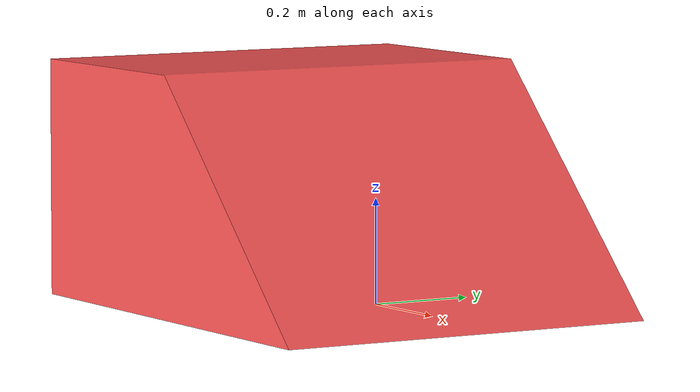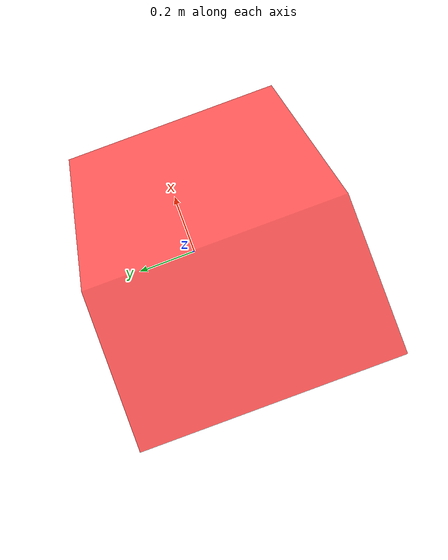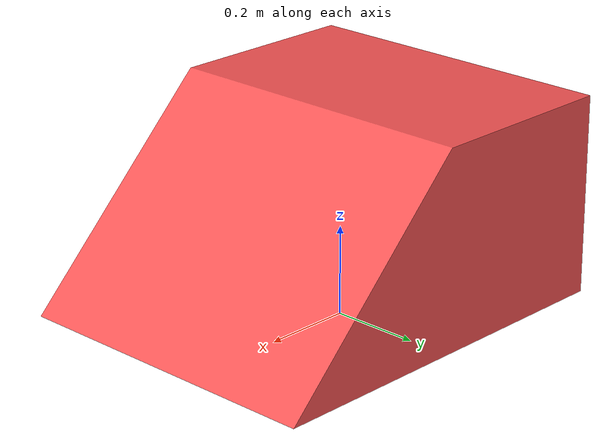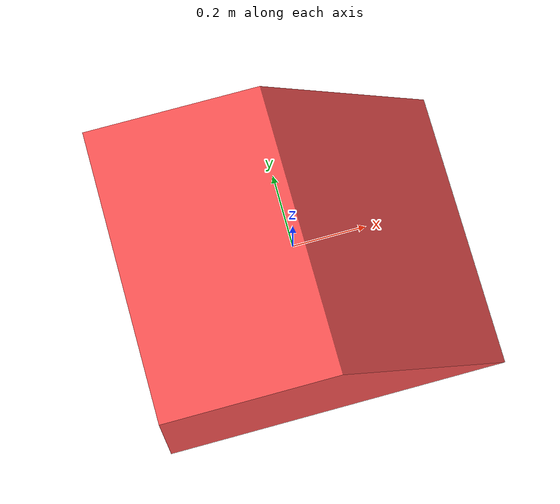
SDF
<?xml version="1.0"?>
<sdf version="1.4">
  <model name="wedge">
    <pose>0 0 0 0 0 0</pose>
    <static>true</static>
    <link name="wedge_link">

      <collision name="wedge_collision">
        <pose>0 0 0 0 0 0</pose>
        <geometry>
          <mesh>
            <uri>model://elevation_mapping_gazebo/meshes/wedge.dae</uri>
          </mesh>
        </geometry>
      </collision>

      <visual name="wedge_visual">
        <pose>0 0 0 0 0 0</pose>
        <geometry>
          <mesh>
            <uri>model://elevation_mapping_gazebo/meshes/wedge.dae</uri>
          </mesh>
        </geometry>
      </visual>

    </link>
  </model>
</sdf>
